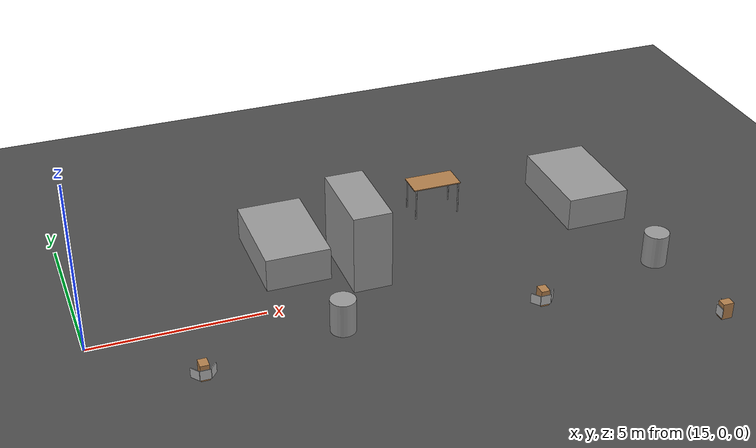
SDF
<sdf version="1.6">
 <world name="default">
  <model name="ground_plane">
   <static>1</static>
   <link name="link">
    <collision name="collision">
     <geometry><plane><normal>0 0 1</normal><size>100 100</size></plane></geometry>
     <surface><friction><ode><mu>100</mu><mu2>50</mu2></ode></friction></surface>
    </collision>
    <visual name="visual">
     <cast_shadows>0</cast_shadows>
     <geometry><plane><normal>0 0 1</normal><size>100 100</size></plane></geometry>
     <material>
      <script><uri>file://media/materials/scripts/gazebo.material</uri><name>Gazebo/DarkGrey</name></script>
     </material>
    </visual>
   </link>
  </model>
  <model name="unit_box_1_clone_3">
   <pose>30.6663 2.55489 0.499989 0 1.2e-05 3.8e-05</pose>
   <link name="link">
    <inertial>
     <mass>1</mass>
     <inertia>
      <ixx>0.166667</ixx>
      <ixy>0</ixy>
      <ixz>0</ixz>
      <iyy>0.166667</iyy>
      <iyz>0</iyz>
      <izz>0.166667</izz>
     </inertia>
    </inertial>
    <collision name="collision"><geometry><box><size>1.90543 2.99439 1</size></box></geometry></collision>
    <visual name="visual">
     <geometry><box><size>1.90543 2.99439 1</size></box></geometry>
     <material>
      <script><name>Gazebo/Grey</name><uri>file://media/materials/scripts/gazebo.material</uri></script>
     </material>
    </visual>
   </link>
  </model>
  <model name="unit_box_1_clone_4">
   <pose>21.2387 2.48779 0.499989 0 -1.2e-05 -0.000153</pose>
   <link name="link">
    <inertial>
     <mass>1</mass>
     <inertia>
      <ixx>0.166667</ixx>
      <ixy>0</ixy>
      <ixz>0</ixz>
      <iyy>0.166667</iyy>
      <iyz>0</iyz>
      <izz>0.166667</izz>
     </inertia>
    </inertial>
    <collision name="collision"><geometry><box><size>1.90543 2.99439 1</size></box></geometry></collision>
    <visual name="visual">
     <geometry><box><size>1.90543 2.99439 1</size></box></geometry>
     <material>
      <script><name>Gazebo/Grey</name><uri>file://media/materials/scripts/gazebo.material</uri></script>
     </material>
    </visual>
   </link>
  </model>
  <model name="unit_box_2_clone_3">
   <pose>23.1302 1.34664 1.1904 4e-06 -1e-06 8.4e-05</pose>
   <link name="link">
    <inertial>
     <mass>1</mass>
     <inertia>
      <ixx>0.166667</ixx>
      <ixy>0</ixy>
      <ixz>0</ixz>
      <iyy>0.166667</iyy>
      <iyz>0</iyz>
      <izz>0.166667</izz>
     </inertia>
    </inertial>
    <collision name="collision"><geometry><box><size>1.13758 2.51147 2.38082</size></box></geometry></collision>
    <visual name="visual">
     <geometry><box><size>1.13758 2.51147 2.38082</size></box></geometry>
     <material>
      <script><name>Gazebo/Grey</name><uri>file://media/materials/scripts/gazebo.material</uri></script>
     </material>
    </visual>
   </link>
  </model>
  <model name="table_clone_3">
   <static>1</static>
   <link name="link">
    <collision name="surface">
     <pose>0 0 1 0 -0 0</pose>
     <geometry><box><size>1.5 0.8 0.03</size></box></geometry>
     <surface><friction><ode><mu>0.6</mu><mu2>0.6</mu2></ode></friction></surface>
    </collision>
    <visual name="visual1">
     <pose>0 0 1 0 -0 0</pose>
     <geometry><box><size>1.5 0.8 0.03</size></box></geometry>
     <material>
      <script><uri>file://media/materials/scripts/gazebo.material</uri><name>Gazebo/Wood</name></script>
     </material>
    </visual>
    <collision name="front_left_leg">
     <pose>0.68 0.38 0.5 0 -0 0</pose>
     <geometry><cylinder><radius>0.02</radius><length>1</length></cylinder></geometry>
    </collision>
    <visual name="front_left_leg">
     <pose>0.68 0.38 0.5 0 -0 0</pose>
     <geometry><cylinder><radius>0.02</radius><length>1</length></cylinder></geometry>
     <material>
      <script><uri>file://media/materials/scripts/gazebo.material</uri><name>Gazebo/Grey</name></script>
     </material>
    </visual>
    <collision name="front_right_leg">
     <pose>0.68 -0.38 0.5 0 -0 0</pose>
     <geometry><cylinder><radius>0.02</radius><length>1</length></cylinder></geometry>
    </collision>
    <visual name="front_right_leg">
     <pose>0.68 -0.38 0.5 0 -0 0</pose>
     <geometry><cylinder><radius>0.02</radius><length>1</length></cylinder></geometry>
     <material>
      <script><uri>file://media/materials/scripts/gazebo.material</uri><name>Gazebo/Grey</name></script>
     </material>
    </visual>
    <collision name="back_right_leg">
     <pose>-0.68 -0.38 0.5 0 -0 0</pose>
     <geometry><cylinder><radius>0.02</radius><length>1</length></cylinder></geometry>
    </collision>
    <visual name="back_right_leg">
     <pose>-0.68 -0.38 0.5 0 -0 0</pose>
     <geometry><cylinder><radius>0.02</radius><length>1</length></cylinder></geometry>
     <material>
      <script><uri>file://media/materials/scripts/gazebo.material</uri><name>Gazebo/Grey</name></script>
     </material>
    </visual>
    <collision name="back_left_leg">
     <pose>-0.68 0.38 0.5 0 -0 0</pose>
     <geometry><cylinder><radius>0.02</radius><length>1</length></cylinder></geometry>
    </collision>
    <visual name="back_left_leg">
     <pose>-0.68 0.38 0.5 0 -0 0</pose>
     <geometry><cylinder><radius>0.02</radius><length>1</length></cylinder></geometry>
     <material>
      <script><uri>file://media/materials/scripts/gazebo.material</uri><name>Gazebo/Grey</name></script>
     </material>
    </visual>
   </link>
   <pose>26.3142 3.57501 0 0 -0 0</pose>
  </model>
  <model name="unit_cylinder_clone_4">
   <pose>21.7162 -1.45636 0.499992 0 -0 0</pose>
   <link name="link">
    <inertial>
     <mass>1</mass>
     <inertia><ixx>0.145833</ixx><ixy>0</ixy><ixz>0</ixz><iyy>0.145833</iyy><iyz>0</iyz><izz>0.125</izz></inertia>
    </inertial>
    <collision name="collision">
     <geometry><cylinder><radius>0.361483</radius><length>1</length></cylinder></geometry>
    </collision>
    <visual name="visual">
     <geometry><cylinder><radius>0.361483</radius><length>1</length></cylinder></geometry>
     <material>
      <script><name>Gazebo/Grey</name><uri>file://media/materials/scripts/gazebo.material</uri></script>
     </material>
    </visual>
   </link>
  </model>
  <model name="unit_cylinder_clone_5">
   <pose>31.2396 -1.3581 0.499992 0 -0 0</pose>
   <link name="link">
    <inertial>
     <mass>1</mass>
     <inertia><ixx>0.145833</ixx><ixy>0</ixy><ixz>0</ixz><iyy>0.145833</iyy><iyz>0</iyz><izz>0.125</izz></inertia>
    </inertial>
    <collision name="collision">
     <geometry><cylinder><radius>0.361483</radius><length>1</length></cylinder></geometry>
    </collision>
    <visual name="visual">
     <geometry><cylinder><radius>0.361483</radius><length>1</length></cylinder></geometry>
     <material>
      <script><name>Gazebo/Grey</name><uri>file://media/materials/scripts/gazebo.material</uri></script>
     </material>
    </visual>
   </link>
  </model>
  <model name="Support_box_wood_clone_0_clone_clone">
   <link name="link">
    <inertial>
     <mass>0.0406949</mass>
     <inertia>
      <ixx>0.00114102</ixx>
      <ixy>0</ixy>
      <ixz>0</ixz>
      <iyy>0.00102768</iyy>
      <iyz>0</iyz>
      <izz>0.000581951</izz>
     </inertia>
    </inertial>
    <pose>0.062754 0.860403 -0.243846 0 -0 0</pose>
    <visual name="visual">
     <geometry><box><size>0.252854 0.320175 0.483682</size></box></geometry>
     <material>
      <script><name>Gazebo/Wood</name><uri>file://media/materials/scripts/gazebo.material</uri></script>
      <shader type="vertex"><normal_map>__default__</normal_map></shader>
      <ambient>0.3 0.3 0.3 1</ambient>
      <diffuse>0.7 0.7 0.7 1</diffuse>
      <specular>0.01 0.01 0.01 1</specular>
      <emissive>0 0 0 1</emissive>
     </material>
    </visual>
    <visual name="ModelPreview_4::link::visual_1">
     <geometry><box><size>0.252854 0.320175 0.483682</size></box></geometry>
     <material>
      <script><name>Gazebo/Wood</name><uri>file://media/materials/scripts/gazebo.material</uri></script>
      <shader type="vertex"><normal_map>__default__</normal_map></shader>
      <ambient>0.3 0.3 0.3 1</ambient>
      <diffuse>0.7 0.7 0.7 1</diffuse>
      <specular>0.01 0.01 0.01 1</specular>
      <emissive>0 0 0 1</emissive>
     </material>
    </visual>
    <collision name="collision">
     <geometry><box><size>0.262854 0.320175 0.483683</size></box></geometry>
     <surface>
      <friction>
       <ode><mu>1</mu><mu2>1</mu2><fdir1>0 0 0</fdir1><slip1>0</slip1><slip2>0</slip2></ode>
       <torsional>
        <coefficient>1</coefficient>
        <patch_radius>0</patch_radius>
        <surface_radius>0</surface_radius>
        <use_patch_radius>1</use_patch_radius>
        <ode><slip>0</slip></ode>
       </torsional>
      </friction>
      <bounce><restitution_coefficient>0</restitution_coefficient><threshold>1e+06</threshold></bounce>
      <contact>
       <collide_without_contact>0</collide_without_contact>
       <collide_without_contact_bitmask>1</collide_without_contact_bitmask>
       <collide_bitmask>1</collide_bitmask>
       <ode>
        <soft_cfm>0</soft_cfm>
        <soft_erp>0.2</soft_erp>
        <kp>1e+13</kp>
        <kd>1</kd>
        <max_vel>0.01</max_vel>
        <min_depth>0</min_depth>
       </ode>
       <bullet>
        <split_impulse>1</split_impulse>
        <split_impulse_penetration_threshold>-0.01</split_impulse_penetration_threshold>
        <soft_cfm>0</soft_cfm>
        <soft_erp>0.2</soft_erp>
        <kp>1e+13</kp>
        <kd>1</kd>
       </bullet>
      </contact>
     </surface>
    </collision>
   </link>
   <static>0</static>
   <pose>32.5444 -4.48055 0.485688 0 -0 1.56379</pose>
  </model>
  <model name="Support_box_wood_clone_1_clone_clone_0">
   <link name="link">
    <inertial>
     <mass>0.0406949</mass>
     <inertia>
      <ixx>0.00114102</ixx>
      <ixy>0</ixy>
      <ixz>0</ixz>
      <iyy>0.00102768</iyy>
      <iyz>0</iyz>
      <izz>0.000581951</izz>
     </inertia>
    </inertial>
    <pose>0.062754 0.860403 -0.243846 0 -0 0</pose>
    <visual name="visual">
     <geometry><box><size>0.252854 0.320175 0.483682</size></box></geometry>
     <material>
      <script><name>Gazebo/Wood</name><uri>file://media/materials/scripts/gazebo.material</uri></script>
      <shader type="vertex"><normal_map>__default__</normal_map></shader>
      <ambient>0.3 0.3 0.3 1</ambient>
      <diffuse>0.7 0.7 0.7 1</diffuse>
      <specular>0.01 0.01 0.01 1</specular>
      <emissive>0 0 0 1</emissive>
     </material>
    </visual>
    <visual name="ModelPreview_4::link::visual_1">
     <geometry><box><size>0.252854 0.320175 0.483682</size></box></geometry>
     <material>
      <script><name>Gazebo/Wood</name><uri>file://media/materials/scripts/gazebo.material</uri></script>
      <shader type="vertex"><normal_map>__default__</normal_map></shader>
      <ambient>0.3 0.3 0.3 1</ambient>
      <diffuse>0.7 0.7 0.7 1</diffuse>
      <specular>0.01 0.01 0.01 1</specular>
      <emissive>0 0 0 1</emissive>
     </material>
    </visual>
    <collision name="collision">
     <geometry><box><size>0.262854 0.320175 0.483683</size></box></geometry>
     <surface>
      <friction>
       <ode><mu>1</mu><mu2>1</mu2><fdir1>0 0 0</fdir1><slip1>0</slip1><slip2>0</slip2></ode>
       <torsional>
        <coefficient>1</coefficient>
        <patch_radius>0</patch_radius>
        <surface_radius>0</surface_radius>
        <use_patch_radius>1</use_patch_radius>
        <ode><slip>0</slip></ode>
       </torsional>
      </friction>
      <bounce><restitution_coefficient>0</restitution_coefficient><threshold>1e+06</threshold></bounce>
      <contact>
       <collide_without_contact>0</collide_without_contact>
       <collide_without_contact_bitmask>1</collide_without_contact_bitmask>
       <collide_bitmask>1</collide_bitmask>
       <ode>
        <soft_cfm>0</soft_cfm>
        <soft_erp>0.2</soft_erp>
        <kp>1e+13</kp>
        <kd>1</kd>
        <max_vel>0.01</max_vel>
        <min_depth>0</min_depth>
       </ode>
       <bullet>
        <split_impulse>1</split_impulse>
        <split_impulse_penetration_threshold>-0.01</split_impulse_penetration_threshold>
        <soft_cfm>0</soft_cfm>
        <soft_erp>0.2</soft_erp>
        <kp>1e+13</kp>
        <kd>1</kd>
       </bullet>
      </contact>
     </surface>
    </collision>
   </link>
   <static>0</static>
   <pose>17.6399 -3.06345 0.485687 1e-06 -1e-06 -0.004602</pose>
  </model>
  <model name="Support_box_wood_clone_1_clone_clone_1">
   <link name="link">
    <inertial>
     <mass>0.0406949</mass>
     <inertia>
      <ixx>0.00114102</ixx>
      <ixy>0</ixy>
      <ixz>0</ixz>
      <iyy>0.00102768</iyy>
      <iyz>0</iyz>
      <izz>0.000581951</izz>
     </inertia>
    </inertial>
    <pose>0.062754 0.860403 -0.243846 0 -0 0</pose>
    <visual name="visual">
     <geometry><box><size>0.252854 0.320175 0.483682</size></box></geometry>
     <material>
      <script><name>Gazebo/Wood</name><uri>file://media/materials/scripts/gazebo.material</uri></script>
      <shader type="vertex"><normal_map>__default__</normal_map></shader>
      <ambient>0.3 0.3 0.3 1</ambient>
      <diffuse>0.7 0.7 0.7 1</diffuse>
      <specular>0.01 0.01 0.01 1</specular>
      <emissive>0 0 0 1</emissive>
     </material>
    </visual>
    <visual name="ModelPreview_4::link::visual_1">
     <geometry><box><size>0.252854 0.320175 0.483682</size></box></geometry>
     <material>
      <script><name>Gazebo/Wood</name><uri>file://media/materials/scripts/gazebo.material</uri></script>
      <shader type="vertex"><normal_map>__default__</normal_map></shader>
      <ambient>0.3 0.3 0.3 1</ambient>
      <diffuse>0.7 0.7 0.7 1</diffuse>
      <specular>0.01 0.01 0.01 1</specular>
      <emissive>0 0 0 1</emissive>
     </material>
    </visual>
    <collision name="collision">
     <geometry><box><size>0.262854 0.320175 0.483683</size></box></geometry>
     <surface>
      <friction>
       <ode><mu>1</mu><mu2>1</mu2><fdir1>0 0 0</fdir1><slip1>0</slip1><slip2>0</slip2></ode>
       <torsional>
        <coefficient>1</coefficient>
        <patch_radius>0</patch_radius>
        <surface_radius>0</surface_radius>
        <use_patch_radius>1</use_patch_radius>
        <ode><slip>0</slip></ode>
       </torsional>
      </friction>
      <bounce><restitution_coefficient>0</restitution_coefficient><threshold>1e+06</threshold></bounce>
      <contact>
       <collide_without_contact>0</collide_without_contact>
       <collide_without_contact_bitmask>1</collide_without_contact_bitmask>
       <collide_bitmask>1</collide_bitmask>
       <ode>
        <soft_cfm>0</soft_cfm>
        <soft_erp>0.2</soft_erp>
        <kp>1e+13</kp>
        <kd>1</kd>
        <max_vel>0.01</max_vel>
        <min_depth>0</min_depth>
       </ode>
       <bullet>
        <split_impulse>1</split_impulse>
        <split_impulse_penetration_threshold>-0.01</split_impulse_penetration_threshold>
        <soft_cfm>0</soft_cfm>
        <soft_erp>0.2</soft_erp>
        <kp>1e+13</kp>
        <kd>1</kd>
       </bullet>
      </contact>
     </surface>
    </collision>
   </link>
   <static>0</static>
   <pose>27.2383 -3.01056 0.485687 0 -0 0.001997</pose>
  </model>
  <model name="Aruco tag201">
   <static>1</static>
   <link name="robot_link">
    <visual name="body_visual">
     <geometry><box><size>0.3 0.3 0.02</size></box></geometry>
     <material>
      <script><uri>model://tag_201/materials/scripts/tag.material</uri><name>aruco_tag_201</name></script>
     </material>
    </visual>
   </link>
   <pose>31.5123 -4.41208 0.2 0 1.57 0</pose>
  </model>
  <model name="Aruco tag201_clone">
   <static>1</static>
   <link name="robot_link">
    <visual name="body_visual">
     <geometry><box><size>0.3 0.3 0.02</size></box></geometry>
     <material>
      <script><uri>model://tag_201/materials/scripts/tag.material</uri><name>aruco_tag_201</name></script>
     </material>
    </visual>
   </link>
   <pose>31.6319 -4.1673 0.2 0.000103 1.57 -0.909896</pose>
  </model>
  <model name="Aruco tag105">
   <static>1</static>
   <link name="robot_link">
    <visual name="body_visual">
     <geometry><box><size>0.3 0.3 0.02</size></box></geometry>
     <material>
      <script><uri>model://tag_105/materials/scripts/tag.material</uri><name>aruco_tag_105</name></script>
     </material>
    </visual>
   </link>
   <pose>27.3082 -2.31231 0.2 1.57 -0 0</pose>
  </model>
  <model name="Aruco tag105_clone">
   <static>1</static>
   <link name="robot_link">
    <visual name="body_visual">
     <geometry><box><size>0.3 0.3 0.02</size></box></geometry>
     <material>
      <script><uri>model://tag_105/materials/scripts/tag.material</uri><name>aruco_tag_105</name></script>
     </material>
    </visual>
   </link>
   <pose>27.0611 -2.19388 0.2 1.57 -0 -0.909999</pose>
  </model>
  <model name="Aruco tag105_clone_0">
   <static>1</static>
   <link name="robot_link">
    <visual name="body_visual">
     <geometry><box><size>0.3 0.3 0.02</size></box></geometry>
     <material>
      <script><uri>model://tag_105/materials/scripts/tag.material</uri><name>aruco_tag_105</name></script>
     </material>
    </visual>
   </link>
   <pose>27.5551 -2.19434 0.2 1.57 -0 0.909999</pose>
  </model>
  <model name="Aruco tag106">
   <static>1</static>
   <link name="robot_link">
    <visual name="body_visual">
     <geometry><box><size>0.3 0.3 0.02</size></box></geometry>
     <material>
      <script><uri>model://tag_106/materials/scripts/tag.material</uri><name>aruco_tag_106</name></script>
     </material>
    </visual>
   </link>
   <pose>17.7089 -2.37349 0.2 1.57 -0 0</pose>
  </model>
  <model name="Aruco tag106_clone">
   <static>1</static>
   <link name="robot_link">
    <visual name="body_visual">
     <geometry><box><size>0.3 0.3 0.02</size></box></geometry>
     <material>
      <script><uri>model://tag_106/materials/scripts/tag.material</uri><name>aruco_tag_106</name></script>
     </material>
    </visual>
   </link>
   <pose>17.9548 -2.25625 0.2 1.57 -0 0.909999</pose>
  </model>
  <model name="Aruco tag106_clone_0">
   <static>1</static>
   <link name="robot_link">
    <visual name="body_visual">
     <geometry><box><size>0.3 0.3 0.02</size></box></geometry>
     <material>
      <script><uri>model://tag_106/materials/scripts/tag.material</uri><name>aruco_tag_106</name></script>
     </material>
    </visual>
   </link>
   <pose>17.4612 -2.25305 0.2 1.57 -0 -0.909999</pose>
  </model>
 </world>
</sdf>
